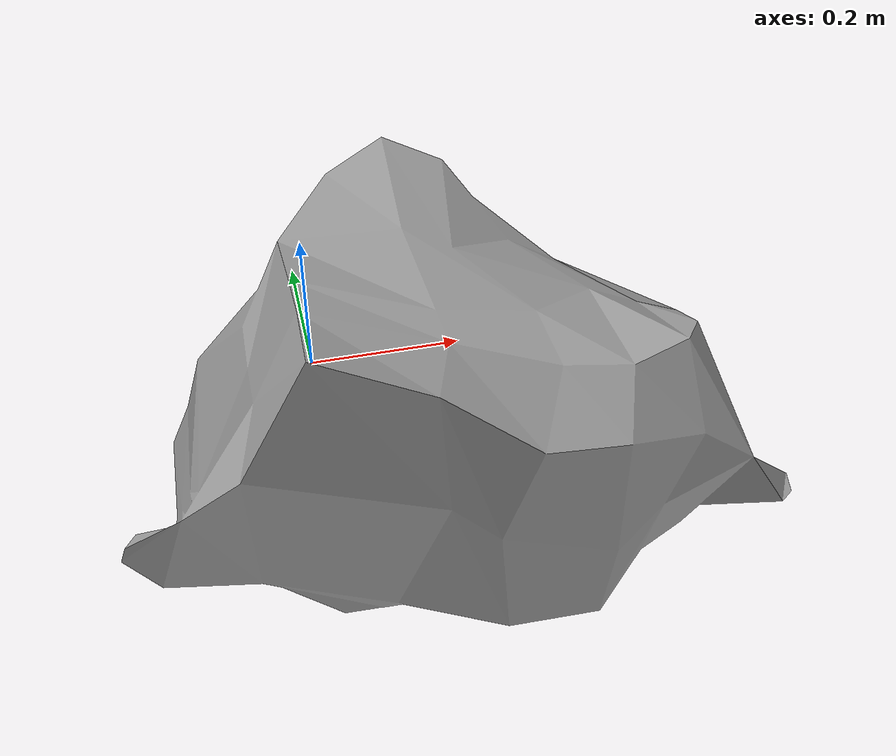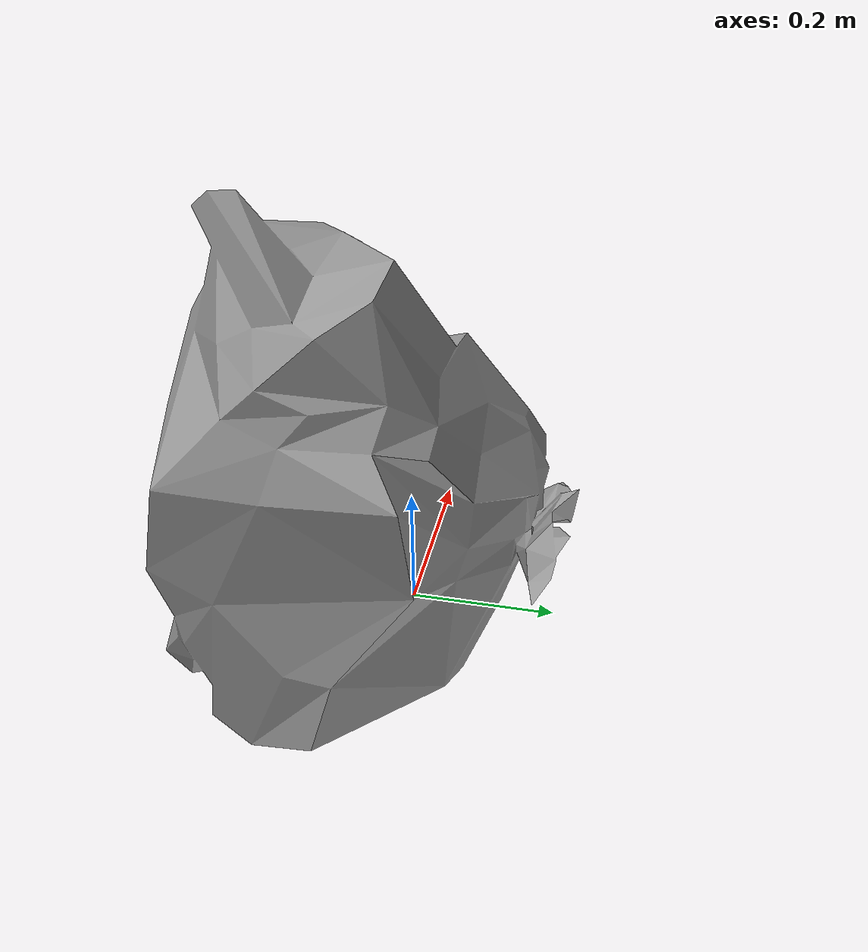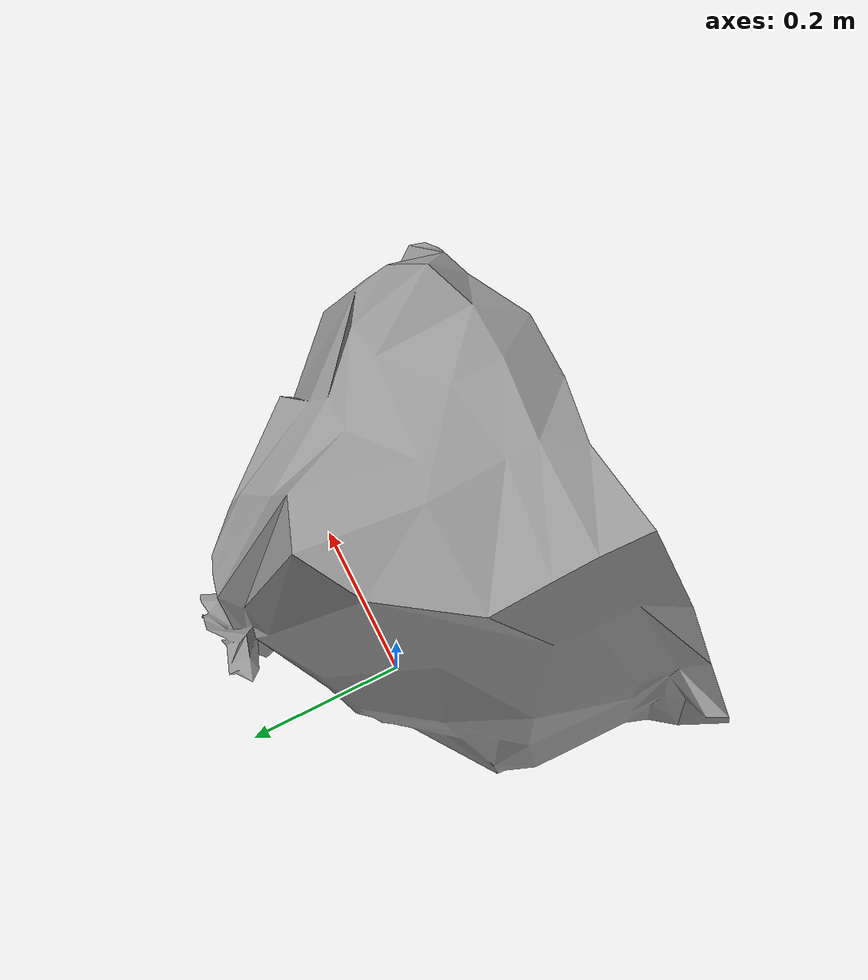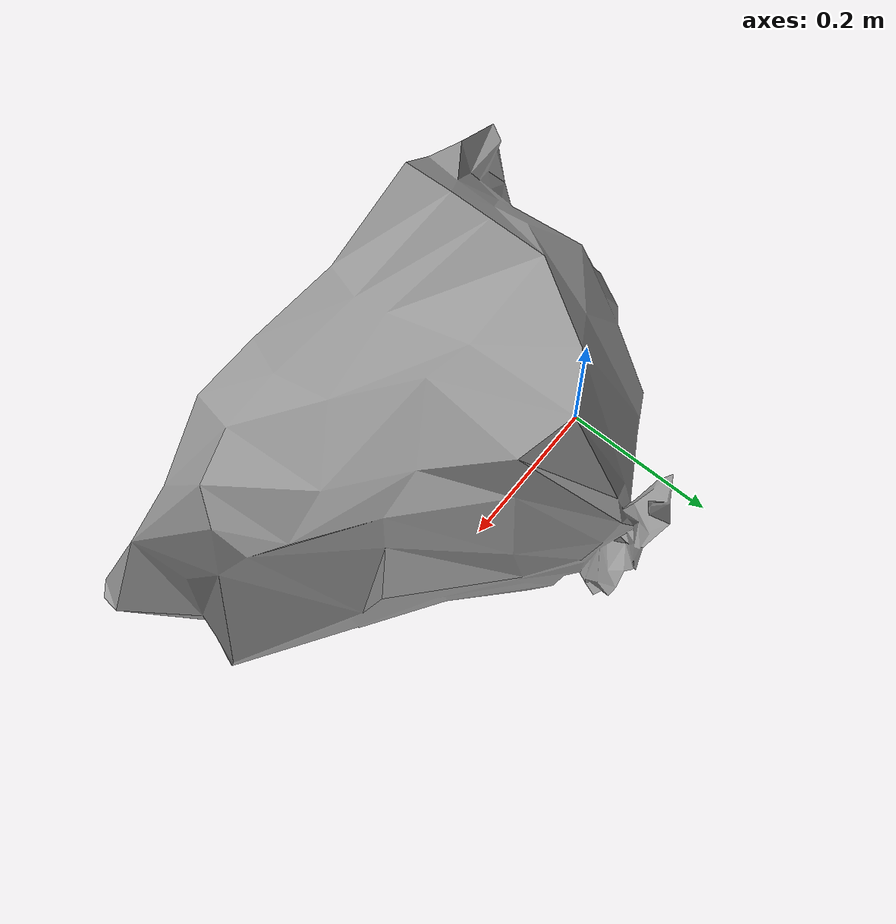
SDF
<?xml version='1.0'?>
<sdf version='1.7'>
  <model name='bag'>
    <link name='link_8'>
      <inertial>
        <mass>1</mass>
        <inertia>
          <ixx>0.166667</ixx>
          <ixy>0</ixy>
          <ixz>0</ixz>
          <iyy>0.166667</iyy>
          <iyz>0</iyz>
          <izz>0.166667</izz>
        </inertia>
        <pose>0 0 0 0 -0 0</pose>
      </inertial>
      <pose>0.161369 -0.077812 0.006962 3.129 -0.000315 3.10602</pose>
      <gravity>1</gravity>
      <self_collide>0</self_collide>
      <kinematic>0</kinematic>
      <enable_wind>0</enable_wind>
      <visual name='visual'>
        <pose>0 0 0 0 -0 0</pose>
        <geometry>
          <mesh>
            <uri>/home/stefan/catkin_ws/src/Bag-catcher-project/bag_detection/models/trash-bag-v2-free/source/model/model.dae</uri>
            <scale>40 40 40</scale>
          </mesh>
        </geometry>
        <material>
          <lighting>1</lighting>
          <script>
            <uri>file://media/materials/scripts/gazebo.material</uri>
            <name>Gazebo/Grey</name>
          </script>
          <shader type='pixel'>
            <normal_map>__default__</normal_map>
          </shader>
          <ambient>0 0 0 1</ambient>
          <diffuse>0.7 0.7 0.7 1</diffuse>
          <specular>0.01 0.01 0.01 1</specular>
          <emissive>0 0 0 1</emissive>
        </material>
        <transparency>0</transparency>
        <cast_shadows>1</cast_shadows>
      </visual>
      <collision name='collision'>
        <laser_retro>0</laser_retro>
        <max_contacts>10</max_contacts>
        <pose>0 0 0 0 -0 0</pose>
        <geometry>
          <mesh>
            <uri>/home/stefan/catkin_ws/src/Bag-catcher-project/bag_detection/models/trash-bag-v2-free/source/model/model.dae</uri>
            <scale>1 1 1</scale>
          </mesh>
        </geometry>
        <surface>
          <friction>
            <ode>
              <mu>1</mu>
              <mu2>1</mu2>
              <fdir1>0 0 0</fdir1>
              <slip1>0</slip1>
              <slip2>0</slip2>
            </ode>
            <torsional>
              <coefficient>1</coefficient>
              <patch_radius>0</patch_radius>
              <surface_radius>0</surface_radius>
              <use_patch_radius>1</use_patch_radius>
              <ode>
                <slip>0</slip>
              </ode>
            </torsional>
          </friction>
          <bounce>
            <restitution_coefficient>0</restitution_coefficient>
            <threshold>1e+06</threshold>
          </bounce>
          <contact>
            <collide_without_contact>0</collide_without_contact>
            <collide_without_contact_bitmask>1</collide_without_contact_bitmask>
            <collide_bitmask>1</collide_bitmask>

            <stiffness>1e6</stiffness>
            <damping>1.0</damping>
            <soft_cfm>0.0</soft_cfm>
            <soft_erp>0.2</soft_erp>
            <kp>1000000.0</kp>
            <kd>1.0</kd>

            <ode>
              <soft_cfm>0</soft_cfm>
              <soft_erp>0.2</soft_erp>
              <kp>1e+13</kp>
              <kd>1</kd>
              <max_vel>0.01</max_vel>
              <min_depth>0</min_depth>
            </ode>
            <bullet>
              <split_impulse>1</split_impulse>
              <split_impulse_penetration_threshold>-0.01</split_impulse_penetration_threshold>
              <soft_cfm>0</soft_cfm>
              <soft_erp>0.2</soft_erp>
              <kp>1e+13</kp>
              <kd>1</kd>
            </bullet>
          </contact>
        </surface>
      </collision>
    </link>
    <static>0</static>
    <allow_auto_disable>1</allow_auto_disable>
  </model>
</sdf>
